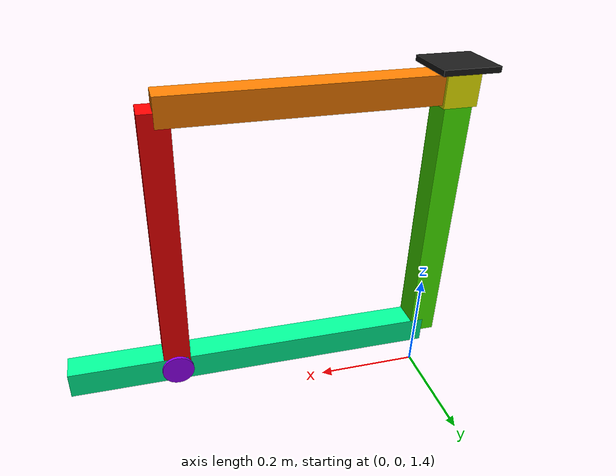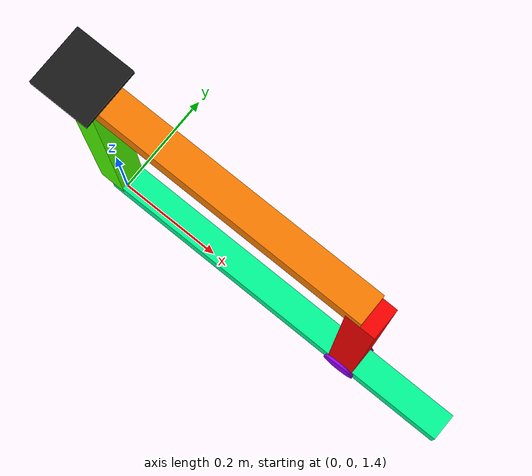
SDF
<?xml version="1.0" ?>
<sdf version="1.9">
    <world name="paragrip_robot_mdam">
        <physics name="1ms" type="ignore">
          <max_step_size>0.001</max_step_size>
          <real_time_factor>1.0</real_time_factor>
          <dart>
            <solver>
              <solver_type>pgs</solver_type>
            </solver>
            <collision_detector>ode</collision_detector>
          </dart>
          <bullet>
            <solver>
              <type>sequential_impulse</type>
              <min_step_size>0.0001</min_step_size>
              <iters>50</iters>
              <sor>1.3</sor>
            </solver>
            <constraints>
              <cfm>0.2</cfm>
              <contact_surface_layer>0.001</contact_surface_layer>
              <split_impulse>1</split_impulse>
              <split_impulse_penetration_threshold>-0.01</split_impulse_penetration_threshold>
            </constraints>
          </bullet>
        </physics>
        <plugin name="gz::sim::systems::Physics"
          filename="gz-sim-physics-system">
          <engine>
            <filename>gz-physics-dartsim-plugin</filename>
          </engine>
        </plugin>
        <plugin
            filename="gz-sim-user-commands-system"
            name="gz::sim::systems::UserCommands">
        </plugin>
        <plugin
            filename="gz-sim-scene-broadcaster-system"
            name="gz::sim::systems::SceneBroadcaster">
        </plugin>

        <light type="directional" name="sun">
            <cast_shadows>true</cast_shadows>
            <pose>0 0 10 0 0 0</pose>
            <diffuse>0.8 0.8 0.8 1</diffuse>
            <specular>0.2 0.2 0.2 1</specular>
            <attenuation>
                <range>1000</range>
                <constant>0.9</constant>
                <linear>0.01</linear>
                <quadratic>0.001</quadratic>
            </attenuation>
            <direction>-0.5 0.1 -0.9</direction>
        </light>

        <model name="ground_plane">
            <static>true</static>
            <link name="link">
                <collision name="collision">
                    <geometry>
                        <plane>
                            <normal>0 0 1</normal>
                        </plane>
                    </geometry>
                </collision>
                <visual name="visual">
                    <geometry>
                        <plane>
                            <normal>0 0 1</normal>
                            <size>100 100</size>
                        </plane>
                    </geometry>
                    <material>
                        <ambient>0.8 0.8 0.8 1</ambient>
                        <diffuse>0.8 0.8 0.8 1</diffuse>
                        <specular>0.8 0.8 0.8 1</specular>
                    </material>
                </visual>
            </link>
        </model>

        <!-- Include demo model -->

        <include>
            <name>closed_loop_demo_model</name>
            <uri>model://closed_loop_demo</uri>
            <pose>0 0 2 0 0 0</pose>
        </include>

    </world>
</sdf>

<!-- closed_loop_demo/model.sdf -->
<sdf version='1.9'>
  <model name='closed_loop_demo'>

    <!-- Define Links -->

    <link name='base_link'>
      <pose>0 0 0 0 0 0</pose>
      <inertial>
        <pose>0 0 0.035 0 0 0</pose>
        <mass>10</mass>
        <inertia>
          <ixx>0.008416667</ixx>
          <ixy>0</ixy>
          <ixz>0</ixz>
          <iyy>0.008416667</iyy>
          <iyz>0</iyz>
          <izz>0.016666667</izz>
        </inertia>
      </inertial>
      <visual name='base_link_visual'>
        <pose>0 0 0.035 0 0 0</pose>
        <geometry>
          <box>
            <size>0.1 0.1 0.01</size>
          </box>
        </geometry>
        <material>
          <diffuse>0.1 0.1 0.1 1</diffuse>
        </material>
      </visual>
    </link>
    <link name='link_0'>
      <pose>0 0 0 0 0 0</pose>
      <inertial>
        <mass>1</mass>
        <inertia>
          <ixx>0.0006</ixx>
          <ixy>0</ixy>
          <ixz>0</ixz>
          <iyy>0.0006</iyy>
          <iyz>0</iyz>
          <izz>0.0006</izz>
        </inertia>
      </inertial>
      <visual name='base_link_visual'>
        <pose>0 0 0 0 0 0</pose>
        <geometry>
          <box>
            <size>0.06 0.06 0.06</size>
          </box>
        </geometry>
        <material>
          <diffuse>1 0.99 0 1</diffuse>
        </material>
      </visual>
    </link>
    <link name='link_1'>
      <pose>0.25 0 0 0 0 0</pose>
      <inertial>
        <mass>1</mass>
        <inertia>
          <ixx>0.000416667</ixx>
          <ixy>0</ixy>
          <ixz>0</ixz>
          <iyy>0.021041667</iyy>
          <iyz>0</iyz>
          <izz>0.021041667</izz>
        </inertia>
      </inertial>
      <visual name='link_1_visual'>
        <pose>0 0 0 0 0 0</pose>
        <geometry>
          <box>
            <size>0.5 0.05 0.05</size>
          </box>
        </geometry>
        <material>
          <diffuse>1 0.5 0 1</diffuse>
        </material>
      </visual>
    </link>
    <link name='link_2'>
      <inertial>
        <mass>1</mass>
        <inertia>
          <ixx>0.021041667</ixx>
          <ixy>0</ixy>
          <ixz>0</ixz>
          <iyy>0.021041667</iyy>
          <iyz>0</iyz>
          <izz>0.000416667</izz>
        </inertia>
      </inertial>
      <pose>0.5 0 -0.25 0 0 0</pose>
      <visual name='link_2_visual'>
        <pose>0 0 0 0 0 0</pose>
        <geometry>
          <box>
            <size>0.05 0.05 0.5</size>
          </box>
        </geometry>
        <material>
          <diffuse>1 0 0 1</diffuse>
        </material>
      </visual>
    </link>

    <link name='link_3'>
      <inertial>
        <mass>1</mass>
        <inertia>
          <ixx>0.021041667</ixx>
          <ixy>0</ixy>
          <ixz>0</ixz>
          <iyy>0.021041667</iyy>
          <iyz>0</iyz>
          <izz>0.000416667</izz>
        </inertia>
      </inertial>
      <pose>0 0 -0.25 0 0 0</pose>
      <visual name='link_3_visual'>
        <pose>0 0 0 0 0 0</pose>
        <geometry>
          <box>
            <size>0.05 0.05 0.5</size>
          </box>
        </geometry>
        <material>
          <diffuse>0.3 1 0 1</diffuse>
        </material>
      </visual>
    </link>
    <link name='link_4'>
      <inertial>
        <mass>1</mass>
        <inertia>
          <ixx>0.000416667</ixx>
          <ixy>0</ixy>
          <ixz>0</ixz>
          <iyy>0.021041667</iyy>
          <iyz>0</iyz>
          <izz>0.021041667</izz>
        </inertia>
      </inertial>
      <pose>0.25 0 -0.5 0 0 0</pose>
      <visual name='link_4_visual'>
        <pose>0 0 0 0 0 0</pose>
        <geometry>
          <box>
            <size>0.5 0.05 0.05</size>
          </box>
        </geometry>
        <material>
          <diffuse>0 1 0.6 1</diffuse>
        </material>
      </visual>
      <visual name='link_4_visual2'>
        <pose>0.35 0 0 0 0 0</pose>
        <geometry>
          <box>
            <size>0.2 0.05 0.05</size>
          </box>
        </geometry>
        <material>
          <diffuse>0 1 0.6 1</diffuse>
        </material>
      </visual>
    </link>

    <!-- Define Joints -->

    <joint name='joint_D0' type='fixed'>
      <child>link_0</child>
      <parent>base_link</parent>
      <pose>0 0 0 0 0 0</pose>
      <axis>
        <xyz>0 0 1</xyz>
        <limit>
          <lower>-2</lower>
          <upper>2</upper>
        </limit>
      </axis>
    </joint>
    <joint name='joint_A0' type='revolute'>
      <child>link_1</child>
      <parent>link_0</parent>
      <pose>-0.25 0 0 0 0 0</pose>
      <axis>
        <xyz>0 1 0</xyz>
        <limit>
          <lower>-3</lower>
          <upper>3</upper>
        </limit>
      </axis>
    </joint>
    <joint name='joint_A' type='revolute'>
      <child>link_2</child>
      <parent>link_1</parent>
      <pose>0 0 0.25 0 0 0</pose>
      <axis>
        <xyz>0 1 0</xyz>
        <limit>
          <lower>-3</lower>
          <upper>3</upper>
        </limit>
      </axis>
    </joint>

    <joint name='joint_B0' type='revolute'>
      <child>link_3</child>
      <parent>link_0</parent>
      <pose>0 0 0.25 0 0 0</pose>
      <axis>
        <xyz>0 1 0</xyz>
        <limit>
          <lower>-3</lower>
          <upper>3</upper>
        </limit>
      </axis>
    </joint>
    <joint name='joint_B' type='revolute'>
      <child>link_4</child>
      <parent>link_3</parent>
      <pose>-0.25 0 0 0 0 0</pose>
      <axis>
        <xyz>0 1 0</xyz>
        <limit>
          <lower>-3</lower>
          <upper>3</upper>
        </limit>
      </axis>
    </joint>

    <!-- create rotatable dummy link at Joint C position on link_4 -->
    <link name='dummy_link'>
      <pose>0.5 0 -0.5 0 0 0</pose>
      <inertial>
        <pose>0 0 0 1.57079633 0 0</pose>
        <mass>0.1</mass>
        <inertia>
          <ixx>5.25e-5</ixx>
          <ixy>0</ixy>
          <ixz>0</ixz>
          <iyy>5.25e-5</iyy>
          <iyz>0</iyz>
          <izz>4.50e-5</izz>
        </inertia>
      </inertial>
      <visual name='dummy_visual'>
        <pose>0 0 0 1.57079633 0 0</pose>
        <geometry>
          <cylinder>
            <radius>0.03</radius>
            <length>0.06</length>
          </cylinder>
        </geometry>
        <material>
          <diffuse>0.6 0 1 1</diffuse>
        </material>
      </visual>
    </link>
    <joint name='joint_C' type='revolute'> <!-- Connect dummy_link to link_4 -->
      <child>dummy_link</child>
      <parent>link_4</parent>
      <pose>0 0 0 0 0 0</pose>
      <axis>
        <xyz>0 1 0</xyz>
        <limit>
          <lower>-3</lower>
          <upper>3</upper>
        </limit>
      </axis>
    </joint>

    <!-- Create joint to World -->

    <joint name="fix_base_to_world" type="fixed">
      <parent>world</parent>
      <child>base_link</child>
    </joint>

    <!-- Plugin to close the loop -->

    <plugin filename="libgz-sim-detachable-joint-system.so" name="gz::sim::systems::DetachableJoint"> <!-- Connect link_2 to link_4 (via dummy_link) -->
      <parent_link>link_2</parent_link>
      <child_model>closed_loop_demo_model</child_model>
      <child_link>dummy_link</child_link>

      <attach_topic>loop/attach</attach_topic>
      <detach_topic>loop/detach</detach_topic>
      <output_topic>loop/state</output_topic>
    </plugin>

  </model>
</sdf>
